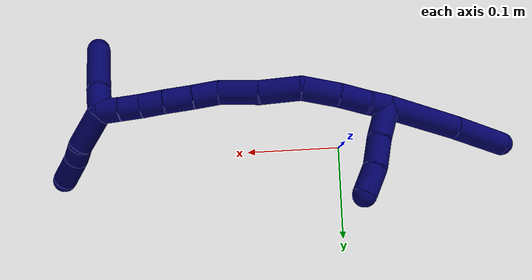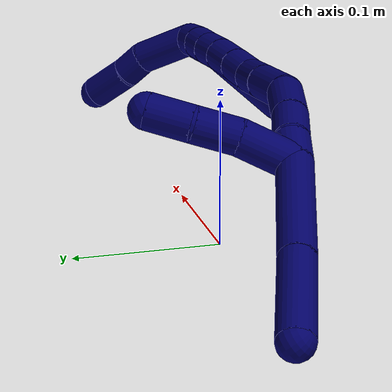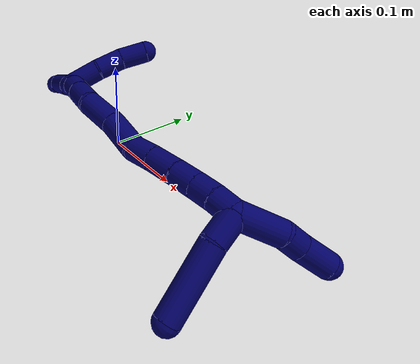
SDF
<sdf version="1.7">
 <world name="default">
  <model name="7">
   <static>0</static>
   <link name="7">
    <collision name="collision-cylinder-e_1_2_8">
     <pose>-0.014241 -0.039343 -0.006333 1.73039 -0.343228 -0.401415</pose>
     <geometry><cylinder><radius>0.0125</radius><length>0.084635</length></cylinder></geometry>
     <surface>
      <friction><ode><mu>1.16</mu><mu2>1.16</mu2><slip1>0</slip1><slip2>0</slip2></ode></friction>
      <contact><ode><kp>1e+06</kp><kd>1</kd><max_vel>0</max_vel><min_depth>0.001</min_depth></ode></contact>
     </surface>
    </collision>
    <visual name="visual-cylinder-e_1_2_8">
     <pose>-0.014241 -0.039343 -0.006333 1.73039 -0.343228 -0.401415</pose>
     <geometry><cylinder><radius>0.0125</radius><length>0.084635</length></cylinder></geometry>
     <material><ambient>0.003922 0 0.403922 1</ambient></material>
    </visual>
    <collision name="collision-cylinder-e_2_8_6">
     <pose>-0.039008 -0.108959 -0.01906 1.77897 -0.32792 -0.402562</pose>
     <geometry><cylinder><radius>0.0125</radius><length>0.065365</length></cylinder></geometry>
     <surface>
      <friction><ode><mu>1.16</mu><mu2>1.16</mu2><slip1>0</slip1><slip2>0</slip2></ode></friction>
      <contact><ode><kp>1e+06</kp><kd>1</kd><max_vel>0</max_vel><min_depth>0.001</min_depth></ode></contact>
     </surface>
    </collision>
    <visual name="visual-cylinder-e_2_8_6">
     <pose>-0.039008 -0.108959 -0.01906 1.77897 -0.32792 -0.402562</pose>
     <geometry><cylinder><radius>0.0125</radius><length>0.065365</length></cylinder></geometry>
     <material><ambient>0.003922 0 0.403922 1</ambient></material>
    </visual>
    <collision name="collision-cylinder-e_1_2_9">
     <pose>-0.013569 0.010835 -0.008892 -2.25798 -0.769187 1.41562</pose>
     <geometry><cylinder><radius>0.0125</radius><length>0.039018</length></cylinder></geometry>
     <surface>
      <friction><ode><mu>1.16</mu><mu2>1.16</mu2><slip1>0</slip1><slip2>0</slip2></ode></friction>
      <contact><ode><kp>1e+06</kp><kd>1</kd><max_vel>0</max_vel><min_depth>0.001</min_depth></ode></contact>
     </surface>
    </collision>
    <visual name="visual-cylinder-e_1_2_9">
     <pose>-0.013569 0.010835 -0.008892 -2.25798 -0.769187 1.41562</pose>
     <geometry><cylinder><radius>0.0125</radius><length>0.039018</length></cylinder></geometry>
     <material><ambient>0.003922 0 0.403922 1</ambient></material>
    </visual>
    <collision name="collision-cylinder-e_2_9_10">
     <pose>-0.038086 0.028 -0.026355 -2.50555 -0.798927 1.817</pose>
     <geometry><cylinder><radius>0.0125</radius><length>0.030553</length></cylinder></geometry>
     <surface>
      <friction><ode><mu>1.16</mu><mu2>1.16</mu2><slip1>0</slip1><slip2>0</slip2></ode></friction>
      <contact><ode><kp>1e+06</kp><kd>1</kd><max_vel>0</max_vel><min_depth>0.001</min_depth></ode></contact>
     </surface>
    </collision>
    <visual name="visual-cylinder-e_2_9_10">
     <pose>-0.038086 0.028 -0.026355 -2.50555 -0.798927 1.817</pose>
     <geometry><cylinder><radius>0.0125</radius><length>0.030553</length></cylinder></geometry>
     <material><ambient>0.003922 0 0.403922 1</ambient></material>
    </visual>
    <collision name="collision-cylinder-e_3_10_5">
     <pose>-0.057508 0.042696 -0.044396 -2.41797 -0.590758 1.35431</pose>
     <geometry><cylinder><radius>0.0125</radius><length>0.030429</length></cylinder></geometry>
     <surface>
      <friction><ode><mu>1.16</mu><mu2>1.16</mu2><slip1>0</slip1><slip2>0</slip2></ode></friction>
      <contact><ode><kp>1e+06</kp><kd>1</kd><max_vel>0</max_vel><min_depth>0.001</min_depth></ode></contact>
     </surface>
    </collision>
    <visual name="visual-cylinder-e_3_10_5">
     <pose>-0.057508 0.042696 -0.044396 -2.41797 -0.590758 1.35431</pose>
     <geometry><cylinder><radius>0.0125</radius><length>0.030429</length></cylinder></geometry>
     <material><ambient>0.003922 0 0.403922 1</ambient></material>
    </visual>
    <collision name="collision-cylinder-e_1_2_11">
     <pose>0.003434 0.010697 0.000988 -1.47873 0.309388 -0.282518</pose>
     <geometry><cylinder><radius>0.0125</radius><length>0.022556</length></cylinder></geometry>
     <surface>
      <friction><ode><mu>1.16</mu><mu2>1.16</mu2><slip1>0</slip1><slip2>0</slip2></ode></friction>
      <contact><ode><kp>1e+06</kp><kd>1</kd><max_vel>0</max_vel><min_depth>0.001</min_depth></ode></contact>
     </surface>
    </collision>
    <visual name="visual-cylinder-e_1_2_11">
     <pose>0.003434 0.010697 0.000988 -1.47873 0.309388 -0.282518</pose>
     <geometry><cylinder><radius>0.0125</radius><length>0.022556</length></cylinder></geometry>
     <material><ambient>0.003922 0 0.403922 1</ambient></material>
    </visual>
    <collision name="collision-cylinder-e_2_11_12">
     <pose>0.014325 0.035073 0.002249 -1.55076 0.499027 -0.489522</pose>
     <geometry><cylinder><radius>0.0125</radius><length>0.031164</length></cylinder></geometry>
     <surface>
      <friction><ode><mu>1.16</mu><mu2>1.16</mu2><slip1>0</slip1><slip2>0</slip2></ode></friction>
      <contact><ode><kp>1e+06</kp><kd>1</kd><max_vel>0</max_vel><min_depth>0.001</min_depth></ode></contact>
     </surface>
    </collision>
    <visual name="visual-cylinder-e_2_11_12">
     <pose>0.014325 0.035073 0.002249 -1.55076 0.499027 -0.489522</pose>
     <geometry><cylinder><radius>0.0125</radius><length>0.031164</length></cylinder></geometry>
     <material><ambient>0.003922 0 0.403922 1</ambient></material>
    </visual>
    <collision name="collision-cylinder-e_3_12_13">
     <pose>0.031368 0.065479 0.001104 -1.65546 0.518857 -0.562462</pose>
     <geometry><cylinder><radius>0.0125</radius><length>0.038664</length></cylinder></geometry>
     <surface>
      <friction><ode><mu>1.16</mu><mu2>1.16</mu2><slip1>0</slip1><slip2>0</slip2></ode></friction>
      <contact><ode><kp>1e+06</kp><kd>1</kd><max_vel>0</max_vel><min_depth>0.001</min_depth></ode></contact>
     </surface>
    </collision>
    <visual name="visual-cylinder-e_3_12_13">
     <pose>0.031368 0.065479 0.001104 -1.65546 0.518857 -0.562462</pose>
     <geometry><cylinder><radius>0.0125</radius><length>0.038664</length></cylinder></geometry>
     <material><ambient>0.003922 0 0.403922 1</ambient></material>
    </visual>
    <collision name="collision-cylinder-e_4_13_14">
     <pose>0.050777 0.098818 -0.00894 -2.04964 0.483283 -0.770714</pose>
     <geometry><cylinder><radius>0.0125</radius><length>0.042275</length></cylinder></geometry>
     <surface>
      <friction><ode><mu>1.16</mu><mu2>1.16</mu2><slip1>0</slip1><slip2>0</slip2></ode></friction>
      <contact><ode><kp>1e+06</kp><kd>1</kd><max_vel>0</max_vel><min_depth>0.001</min_depth></ode></contact>
     </surface>
    </collision>
    <visual name="visual-cylinder-e_4_13_14">
     <pose>0.050777 0.098818 -0.00894 -2.04964 0.483283 -0.770714</pose>
     <geometry><cylinder><radius>0.0125</radius><length>0.042275</length></cylinder></geometry>
     <material><ambient>0.003922 0 0.403922 1</ambient></material>
    </visual>
    <collision name="collision-cylinder-e_5_14_15">
     <pose>0.072743 0.130883 -0.025177 -2.02856 0.614024 -0.942622</pose>
     <geometry><cylinder><radius>0.0125</radius><length>0.042152</length></cylinder></geometry>
     <surface>
      <friction><ode><mu>1.16</mu><mu2>1.16</mu2><slip1>0</slip1><slip2>0</slip2></ode></friction>
      <contact><ode><kp>1e+06</kp><kd>1</kd><max_vel>0</max_vel><min_depth>0.001</min_depth></ode></contact>
     </surface>
    </collision>
    <visual name="visual-cylinder-e_5_14_15">
     <pose>0.072743 0.130883 -0.025177 -2.02856 0.614024 -0.942622</pose>
     <geometry><cylinder><radius>0.0125</radius><length>0.042152</length></cylinder></geometry>
     <material><ambient>0.003922 0 0.403922 1</ambient></material>
    </visual>
    <collision name="collision-cylinder-e_6_15_16">
     <pose>0.08904 0.158065 -0.037931 -1.98395 0.31369 -0.474872</pose>
     <geometry><cylinder><radius>0.0125</radius><length>0.026928</length></cylinder></geometry>
     <surface>
      <friction><ode><mu>1.16</mu><mu2>1.16</mu2><slip1>0</slip1><slip2>0</slip2></ode></friction>
      <contact><ode><kp>1e+06</kp><kd>1</kd><max_vel>0</max_vel><min_depth>0.001</min_depth></ode></contact>
     </surface>
    </collision>
    <visual name="visual-cylinder-e_6_15_16">
     <pose>0.08904 0.158065 -0.037931 -1.98395 0.31369 -0.474872</pose>
     <geometry><cylinder><radius>0.0125</radius><length>0.026928</length></cylinder></geometry>
     <material><ambient>0.003922 0 0.403922 1</ambient></material>
    </visual>
    <collision name="collision-cylinder-e_7_16_17">
     <pose>0.098383 0.182285 -0.048764 -1.99828 0.361389 -0.553391</pose>
     <geometry><cylinder><radius>0.0125</radius><length>0.029348</length></cylinder></geometry>
     <surface>
      <friction><ode><mu>1.16</mu><mu2>1.16</mu2><slip1>0</slip1><slip2>0</slip2></ode></friction>
      <contact><ode><kp>1e+06</kp><kd>1</kd><max_vel>0</max_vel><min_depth>0.001</min_depth></ode></contact>
     </surface>
    </collision>
    <visual name="visual-cylinder-e_7_16_17">
     <pose>0.098383 0.182285 -0.048764 -1.99828 0.361389 -0.553391</pose>
     <geometry><cylinder><radius>0.0125</radius><length>0.029348</length></cylinder></geometry>
     <material><ambient>0.003922 0 0.403922 1</ambient></material>
    </visual>
    <collision name="collision-cylinder-e_8_17_18">
     <pose>0.107925 0.204618 -0.059599 -2.05242 0.373598 -0.604948</pose>
     <geometry><cylinder><radius>0.0125</radius><length>0.023855</length></cylinder></geometry>
     <surface>
      <friction><ode><mu>1.16</mu><mu2>1.16</mu2><slip1>0</slip1><slip2>0</slip2></ode></friction>
      <contact><ode><kp>1e+06</kp><kd>1</kd><max_vel>0</max_vel><min_depth>0.001</min_depth></ode></contact>
     </surface>
    </collision>
    <visual name="visual-cylinder-e_8_17_18">
     <pose>0.107925 0.204618 -0.059599 -2.05242 0.373598 -0.604948</pose>
     <geometry><cylinder><radius>0.0125</radius><length>0.023855</length></cylinder></geometry>
     <material><ambient>0.003922 0 0.403922 1</ambient></material>
    </visual>
    <collision name="collision-cylinder-e_9_18_19">
     <pose>0.116449 0.223371 -0.069067 -2.02258 0.398507 -0.623835</pose>
     <geometry><cylinder><radius>0.0125</radius><length>0.021496</length></cylinder></geometry>
     <surface>
      <friction><ode><mu>1.16</mu><mu2>1.16</mu2><slip1>0</slip1><slip2>0</slip2></ode></friction>
      <contact><ode><kp>1e+06</kp><kd>1</kd><max_vel>0</max_vel><min_depth>0.001</min_depth></ode></contact>
     </surface>
    </collision>
    <visual name="visual-cylinder-e_9_18_19">
     <pose>0.116449 0.223371 -0.069067 -2.02258 0.398507 -0.623835</pose>
     <geometry><cylinder><radius>0.0125</radius><length>0.021496</length></cylinder></geometry>
     <material><ambient>0.003922 0 0.403922 1</ambient></material>
    </visual>
    <collision name="collision-cylinder-e_10_19_1">
     <pose>0.125432 0.240665 -0.078168 -2.08871 0.462727 -0.770266</pose>
     <geometry><cylinder><radius>0.0125</radius><length>0.021562</length></cylinder></geometry>
     <surface>
      <friction><ode><mu>1.16</mu><mu2>1.16</mu2><slip1>0</slip1><slip2>0</slip2></ode></friction>
      <contact><ode><kp>1e+06</kp><kd>1</kd><max_vel>0</max_vel><min_depth>0.001</min_depth></ode></contact>
     </surface>
    </collision>
    <visual name="visual-cylinder-e_10_19_1">
     <pose>0.125432 0.240665 -0.078168 -2.08871 0.462727 -0.770266</pose>
     <geometry><cylinder><radius>0.0125</radius><length>0.021562</length></cylinder></geometry>
     <material><ambient>0.003922 0 0.403922 1</ambient></material>
    </visual>
    <collision name="collision-cylinder-e_1_1_20">
     <pose>0.143942 0.245505 -0.079493 0.798408 1.22434 0.575945</pose>
     <geometry><cylinder><radius>0.0125</radius><length>0.029125</length></cylinder></geometry>
     <surface>
      <friction><ode><mu>1.16</mu><mu2>1.16</mu2><slip1>0</slip1><slip2>0</slip2></ode></friction>
      <contact><ode><kp>1e+06</kp><kd>1</kd><max_vel>0</max_vel><min_depth>0.001</min_depth></ode></contact>
     </surface>
    </collision>
    <visual name="visual-cylinder-e_1_1_20">
     <pose>0.143942 0.245505 -0.079493 0.798408 1.22434 0.575945</pose>
     <geometry><cylinder><radius>0.0125</radius><length>0.029125</length></cylinder></geometry>
     <material><ambient>0.003922 0 0.403922 1</ambient></material>
    </visual>
    <collision name="collision-cylinder-e_2_20_4">
     <pose>0.191207 0.230847 -0.073704 1.36348 1.24447 1.05433</pose>
     <geometry><cylinder><radius>0.0125</radius><length>0.070875</length></cylinder></geometry>
     <surface>
      <friction><ode><mu>1.16</mu><mu2>1.16</mu2><slip1>0</slip1><slip2>0</slip2></ode></friction>
      <contact><ode><kp>1e+06</kp><kd>1</kd><max_vel>0</max_vel><min_depth>0.001</min_depth></ode></contact>
     </surface>
    </collision>
    <visual name="visual-cylinder-e_2_20_4">
     <pose>0.191207 0.230847 -0.073704 1.36348 1.24447 1.05433</pose>
     <geometry><cylinder><radius>0.0125</radius><length>0.070875</length></cylinder></geometry>
     <material><ambient>0.003922 0 0.403922 1</ambient></material>
    </visual>
    <collision name="collision-cylinder-e_1_1_21">
     <pose>0.130512 0.256107 -0.10448 -2.82481 0.011804 -0.07387</pose>
     <geometry><cylinder><radius>0.0125</radius><length>0.04533</length></cylinder></geometry>
     <surface>
      <friction><ode><mu>1.16</mu><mu2>1.16</mu2><slip1>0</slip1><slip2>0</slip2></ode></friction>
      <contact><ode><kp>1e+06</kp><kd>1</kd><max_vel>0</max_vel><min_depth>0.001</min_depth></ode></contact>
     </surface>
    </collision>
    <visual name="visual-cylinder-e_1_1_21">
     <pose>0.130512 0.256107 -0.10448 -2.82481 0.011804 -0.07387</pose>
     <geometry><cylinder><radius>0.0125</radius><length>0.04533</length></cylinder></geometry>
     <material><ambient>0.003922 0 0.403922 1</ambient></material>
    </visual>
    <collision name="collision-cylinder-e_2_21_22">
     <pose>0.13229 0.263538 -0.136187 -3.10511 0.147313 -2.65686</pose>
     <geometry><cylinder><radius>0.0125</radius><length>0.02058</length></cylinder></geometry>
     <surface>
      <friction><ode><mu>1.16</mu><mu2>1.16</mu2><slip1>0</slip1><slip2>0</slip2></ode></friction>
      <contact><ode><kp>1e+06</kp><kd>1</kd><max_vel>0</max_vel><min_depth>0.001</min_depth></ode></contact>
     </surface>
    </collision>
    <visual name="visual-cylinder-e_2_21_22">
     <pose>0.13229 0.263538 -0.136187 -3.10511 0.147313 -2.65686</pose>
     <geometry><cylinder><radius>0.0125</radius><length>0.02058</length></cylinder></geometry>
     <material><ambient>0.003922 0 0.403922 1</ambient></material>
    </visual>
    <collision name="collision-cylinder-e_3_22_3">
     <pose>0.136257 0.267002 -0.16294 -2.95721 0.144615 -1.32917</pose>
     <geometry><cylinder><radius>0.0125</radius><length>0.03409</length></cylinder></geometry>
     <surface>
      <friction><ode><mu>1.16</mu><mu2>1.16</mu2><slip1>0</slip1><slip2>0</slip2></ode></friction>
      <contact><ode><kp>1e+06</kp><kd>1</kd><max_vel>0</max_vel><min_depth>0.001</min_depth></ode></contact>
     </surface>
    </collision>
    <visual name="visual-cylinder-e_3_22_3">
     <pose>0.136257 0.267002 -0.16294 -2.95721 0.144615 -1.32917</pose>
     <geometry><cylinder><radius>0.0125</radius><length>0.03409</length></cylinder></geometry>
     <material><ambient>0.003922 0 0.403922 1</ambient></material>
    </visual>
    <collision name="collision-sphere-3">
     <pose>0.138713 0.270094 -0.179521 0 -0 0</pose>
     <geometry><sphere><radius>0.0125</radius></sphere></geometry>
     <surface>
      <friction><ode><mu>1.16</mu><mu2>1.16</mu2><slip1>0</slip1><slip2>0</slip2></ode></friction>
      <contact><ode><kp>1e+06</kp><kd>1</kd><max_vel>0</max_vel><min_depth>0.001</min_depth></ode></contact>
     </surface>
    </collision>
    <visual name="visual-sphere-3">
     <pose>0.138713 0.270094 -0.179521 0 -0 0</pose>
     <geometry><sphere><radius>0.0125</radius></sphere></geometry>
     <material><ambient>0.003922 0 0.403922 1</ambient></material>
    </visual>
    <collision name="collision-sphere-22">
     <pose>0.1338 0.26391 -0.146359 0 -0 0</pose>
     <geometry><sphere><radius>0.0125</radius></sphere></geometry>
     <surface>
      <friction><ode><mu>1.16</mu><mu2>1.16</mu2><slip1>0</slip1><slip2>0</slip2></ode></friction>
      <contact><ode><kp>1e+06</kp><kd>1</kd><max_vel>0</max_vel><min_depth>0.001</min_depth></ode></contact>
     </surface>
    </collision>
    <visual name="visual-sphere-22">
     <pose>0.1338 0.26391 -0.146359 0 -0 0</pose>
     <geometry><sphere><radius>0.0125</radius></sphere></geometry>
     <material><ambient>0.003922 0 0.403922 1</ambient></material>
    </visual>
    <collision name="collision-sphere-21">
     <pose>0.13078 0.263167 -0.126016 0 -0 0</pose>
     <geometry><sphere><radius>0.0125</radius></sphere></geometry>
     <surface>
      <friction><ode><mu>1.16</mu><mu2>1.16</mu2><slip1>0</slip1><slip2>0</slip2></ode></friction>
      <contact><ode><kp>1e+06</kp><kd>1</kd><max_vel>0</max_vel><min_depth>0.001</min_depth></ode></contact>
     </surface>
    </collision>
    <visual name="visual-sphere-21">
     <pose>0.13078 0.263167 -0.126016 0 -0 0</pose>
     <geometry><sphere><radius>0.0125</radius></sphere></geometry>
     <material><ambient>0.003922 0 0.403922 1</ambient></material>
    </visual>
    <collision name="collision-sphere-4">
     <pose>0.224774 0.21973 -0.071366 0 -0 0</pose>
     <geometry><sphere><radius>0.0125</radius></sphere></geometry>
     <surface>
      <friction><ode><mu>1.16</mu><mu2>1.16</mu2><slip1>0</slip1><slip2>0</slip2></ode></friction>
      <contact><ode><kp>1e+06</kp><kd>1</kd><max_vel>0</max_vel><min_depth>0.001</min_depth></ode></contact>
     </surface>
    </collision>
    <visual name="visual-sphere-4">
     <pose>0.224774 0.21973 -0.071366 0 -0 0</pose>
     <geometry><sphere><radius>0.0125</radius></sphere></geometry>
     <material><ambient>0.003922 0 0.403922 1</ambient></material>
    </visual>
    <collision name="collision-sphere-20">
     <pose>0.157639 0.241963 -0.076042 0 -0 0</pose>
     <geometry><sphere><radius>0.0125</radius></sphere></geometry>
     <surface>
      <friction><ode><mu>1.16</mu><mu2>1.16</mu2><slip1>0</slip1><slip2>0</slip2></ode></friction>
      <contact><ode><kp>1e+06</kp><kd>1</kd><max_vel>0</max_vel><min_depth>0.001</min_depth></ode></contact>
     </surface>
    </collision>
    <visual name="visual-sphere-20">
     <pose>0.157639 0.241963 -0.076042 0 -0 0</pose>
     <geometry><sphere><radius>0.0125</radius></sphere></geometry>
     <material><ambient>0.003922 0 0.403922 1</ambient></material>
    </visual>
    <collision name="collision-sphere-5">
     <pose>-0.065982 0.051062 -0.053865 0 -0 0</pose>
     <geometry><sphere><radius>0.0125</radius></sphere></geometry>
     <surface>
      <friction><ode><mu>1.16</mu><mu2>1.16</mu2><slip1>0</slip1><slip2>0</slip2></ode></friction>
      <contact><ode><kp>1e+06</kp><kd>1</kd><max_vel>0</max_vel><min_depth>0.001</min_depth></ode></contact>
     </surface>
    </collision>
    <visual name="visual-sphere-5">
     <pose>-0.065982 0.051062 -0.053865 0 -0 0</pose>
     <geometry><sphere><radius>0.0125</radius></sphere></geometry>
     <material><ambient>0.003922 0 0.403922 1</ambient></material>
    </visual>
    <collision name="collision-sphere-10">
     <pose>-0.049034 0.034329 -0.034926 0 -0 0</pose>
     <geometry><sphere><radius>0.0125</radius></sphere></geometry>
     <surface>
      <friction><ode><mu>1.16</mu><mu2>1.16</mu2><slip1>0</slip1><slip2>0</slip2></ode></friction>
      <contact><ode><kp>1e+06</kp><kd>1</kd><max_vel>0</max_vel><min_depth>0.001</min_depth></ode></contact>
     </surface>
    </collision>
    <visual name="visual-sphere-10">
     <pose>-0.049034 0.034329 -0.034926 0 -0 0</pose>
     <geometry><sphere><radius>0.0125</radius></sphere></geometry>
     <material><ambient>0.003922 0 0.403922 1</ambient></material>
    </visual>
    <collision name="collision-sphere-6">
     <pose>-0.049534 -0.139232 -0.025455 0 -0 0</pose>
     <geometry><sphere><radius>0.0125</radius></sphere></geometry>
     <surface>
      <friction><ode><mu>1.16</mu><mu2>1.16</mu2><slip1>0</slip1><slip2>0</slip2></ode></friction>
      <contact><ode><kp>1e+06</kp><kd>1</kd><max_vel>0</max_vel><min_depth>0.001</min_depth></ode></contact>
     </surface>
    </collision>
    <visual name="visual-sphere-6">
     <pose>-0.049534 -0.139232 -0.025455 0 -0 0</pose>
     <geometry><sphere><radius>0.0125</radius></sphere></geometry>
     <material><ambient>0.003922 0 0.403922 1</ambient></material>
    </visual>
    <collision name="collision-sphere-9">
     <pose>-0.027139 0.021671 -0.017783 0 -0 0</pose>
     <geometry><sphere><radius>0.0125</radius></sphere></geometry>
     <surface>
      <friction><ode><mu>1.16</mu><mu2>1.16</mu2><slip1>0</slip1><slip2>0</slip2></ode></friction>
      <contact><ode><kp>1e+06</kp><kd>1</kd><max_vel>0</max_vel><min_depth>0.001</min_depth></ode></contact>
     </surface>
    </collision>
    <visual name="visual-sphere-9">
     <pose>-0.027139 0.021671 -0.017783 0 -0 0</pose>
     <geometry><sphere><radius>0.0125</radius></sphere></geometry>
     <material><ambient>0.003922 0 0.403922 1</ambient></material>
    </visual>
    <collision name="collision-sphere-2">
     <geometry><sphere><radius>0.0125</radius></sphere></geometry>
     <surface>
      <friction><ode><mu>1.16</mu><mu2>1.16</mu2><slip1>0</slip1><slip2>0</slip2></ode></friction>
      <contact><ode><kp>1e+06</kp><kd>1</kd><max_vel>0</max_vel><min_depth>0.001</min_depth></ode></contact>
     </surface>
    </collision>
    <visual name="visual-sphere-2">
     <geometry><sphere><radius>0.0125</radius></sphere></geometry>
     <material><ambient>0.003922 0 0.403922 1</ambient></material>
    </visual>
    <collision name="collision-sphere-19">
     <pose>0.12062 0.232283 -0.073392 0 -0 0</pose>
     <geometry><sphere><radius>0.0125</radius></sphere></geometry>
     <surface>
      <friction><ode><mu>1.16</mu><mu2>1.16</mu2><slip1>0</slip1><slip2>0</slip2></ode></friction>
      <contact><ode><kp>1e+06</kp><kd>1</kd><max_vel>0</max_vel><min_depth>0.001</min_depth></ode></contact>
     </surface>
    </collision>
    <visual name="visual-sphere-19">
     <pose>0.12062 0.232283 -0.073392 0 -0 0</pose>
     <geometry><sphere><radius>0.0125</radius></sphere></geometry>
     <material><ambient>0.003922 0 0.403922 1</ambient></material>
    </visual>
    <collision name="collision-sphere-8">
     <pose>-0.028482 -0.078686 -0.012665 0 -0 0</pose>
     <geometry><sphere><radius>0.0125</radius></sphere></geometry>
     <surface>
      <friction><ode><mu>1.16</mu><mu2>1.16</mu2><slip1>0</slip1><slip2>0</slip2></ode></friction>
      <contact><ode><kp>1e+06</kp><kd>1</kd><max_vel>0</max_vel><min_depth>0.001</min_depth></ode></contact>
     </surface>
    </collision>
    <visual name="visual-sphere-8">
     <pose>-0.028482 -0.078686 -0.012665 0 -0 0</pose>
     <geometry><sphere><radius>0.0125</radius></sphere></geometry>
     <material><ambient>0.003922 0 0.403922 1</ambient></material>
    </visual>
    <collision name="collision-sphere-11">
     <pose>0.006868 0.021394 0.001975 0 -0 0</pose>
     <geometry><sphere><radius>0.0125</radius></sphere></geometry>
     <surface>
      <friction><ode><mu>1.16</mu><mu2>1.16</mu2><slip1>0</slip1><slip2>0</slip2></ode></friction>
      <contact><ode><kp>1e+06</kp><kd>1</kd><max_vel>0</max_vel><min_depth>0.001</min_depth></ode></contact>
     </surface>
    </collision>
    <visual name="visual-sphere-11">
     <pose>0.006868 0.021394 0.001975 0 -0 0</pose>
     <geometry><sphere><radius>0.0125</radius></sphere></geometry>
     <material><ambient>0.003922 0 0.403922 1</ambient></material>
    </visual>
    <collision name="collision-sphere-12">
     <pose>0.021782 0.048752 0.002523 0 -0 0</pose>
     <geometry><sphere><radius>0.0125</radius></sphere></geometry>
     <surface>
      <friction><ode><mu>1.16</mu><mu2>1.16</mu2><slip1>0</slip1><slip2>0</slip2></ode></friction>
      <contact><ode><kp>1e+06</kp><kd>1</kd><max_vel>0</max_vel><min_depth>0.001</min_depth></ode></contact>
     </surface>
    </collision>
    <visual name="visual-sphere-12">
     <pose>0.021782 0.048752 0.002523 0 -0 0</pose>
     <geometry><sphere><radius>0.0125</radius></sphere></geometry>
     <material><ambient>0.003922 0 0.403922 1</ambient></material>
    </visual>
    <collision name="collision-sphere-13">
     <pose>0.040955 0.082207 -0.000316 0 -0 0</pose>
     <geometry><sphere><radius>0.0125</radius></sphere></geometry>
     <surface>
      <friction><ode><mu>1.16</mu><mu2>1.16</mu2><slip1>0</slip1><slip2>0</slip2></ode></friction>
      <contact><ode><kp>1e+06</kp><kd>1</kd><max_vel>0</max_vel><min_depth>0.001</min_depth></ode></contact>
     </surface>
    </collision>
    <visual name="visual-sphere-13">
     <pose>0.040955 0.082207 -0.000316 0 -0 0</pose>
     <geometry><sphere><radius>0.0125</radius></sphere></geometry>
     <material><ambient>0.003922 0 0.403922 1</ambient></material>
    </visual>
    <collision name="collision-sphere-14">
     <pose>0.0606 0.11543 -0.017564 0 -0 0</pose>
     <geometry><sphere><radius>0.0125</radius></sphere></geometry>
     <surface>
      <friction><ode><mu>1.16</mu><mu2>1.16</mu2><slip1>0</slip1><slip2>0</slip2></ode></friction>
      <contact><ode><kp>1e+06</kp><kd>1</kd><max_vel>0</max_vel><min_depth>0.001</min_depth></ode></contact>
     </surface>
    </collision>
    <visual name="visual-sphere-14">
     <pose>0.0606 0.11543 -0.017564 0 -0 0</pose>
     <geometry><sphere><radius>0.0125</radius></sphere></geometry>
     <material><ambient>0.003922 0 0.403922 1</ambient></material>
    </visual>
    <collision name="collision-sphere-15">
     <pose>0.084886 0.146335 -0.032789 0 -0 0</pose>
     <geometry><sphere><radius>0.0125</radius></sphere></geometry>
     <surface>
      <friction><ode><mu>1.16</mu><mu2>1.16</mu2><slip1>0</slip1><slip2>0</slip2></ode></friction>
      <contact><ode><kp>1e+06</kp><kd>1</kd><max_vel>0</max_vel><min_depth>0.001</min_depth></ode></contact>
     </surface>
    </collision>
    <visual name="visual-sphere-15">
     <pose>0.084886 0.146335 -0.032789 0 -0 0</pose>
     <geometry><sphere><radius>0.0125</radius></sphere></geometry>
     <material><ambient>0.003922 0 0.403922 1</ambient></material>
    </visual>
    <collision name="collision-sphere-16">
     <pose>0.093195 0.169794 -0.043073 0 -0 0</pose>
     <geometry><sphere><radius>0.0125</radius></sphere></geometry>
     <surface>
      <friction><ode><mu>1.16</mu><mu2>1.16</mu2><slip1>0</slip1><slip2>0</slip2></ode></friction>
      <contact><ode><kp>1e+06</kp><kd>1</kd><max_vel>0</max_vel><min_depth>0.001</min_depth></ode></contact>
     </surface>
    </collision>
    <visual name="visual-sphere-16">
     <pose>0.093195 0.169794 -0.043073 0 -0 0</pose>
     <geometry><sphere><radius>0.0125</radius></sphere></geometry>
     <material><ambient>0.003922 0 0.403922 1</ambient></material>
    </visual>
    <collision name="collision-sphere-17">
     <pose>0.103572 0.194776 -0.054455 0 -0 0</pose>
     <geometry><sphere><radius>0.0125</radius></sphere></geometry>
     <surface>
      <friction><ode><mu>1.16</mu><mu2>1.16</mu2><slip1>0</slip1><slip2>0</slip2></ode></friction>
      <contact><ode><kp>1e+06</kp><kd>1</kd><max_vel>0</max_vel><min_depth>0.001</min_depth></ode></contact>
     </surface>
    </collision>
    <visual name="visual-sphere-17">
     <pose>0.103572 0.194776 -0.054455 0 -0 0</pose>
     <geometry><sphere><radius>0.0125</radius></sphere></geometry>
     <material><ambient>0.003922 0 0.403922 1</ambient></material>
    </visual>
    <collision name="collision-sphere-18">
     <pose>0.112278 0.214459 -0.064742 0 -0 0</pose>
     <geometry><sphere><radius>0.0125</radius></sphere></geometry>
     <surface>
      <friction><ode><mu>1.16</mu><mu2>1.16</mu2><slip1>0</slip1><slip2>0</slip2></ode></friction>
      <contact><ode><kp>1e+06</kp><kd>1</kd><max_vel>0</max_vel><min_depth>0.001</min_depth></ode></contact>
     </surface>
    </collision>
    <visual name="visual-sphere-18">
     <pose>0.112278 0.214459 -0.064742 0 -0 0</pose>
     <geometry><sphere><radius>0.0125</radius></sphere></geometry>
     <material><ambient>0.003922 0 0.403922 1</ambient></material>
    </visual>
    <collision name="collision-sphere-1">
     <pose>0.130245 0.249047 -0.082944 0 -0 0</pose>
     <geometry><sphere><radius>0.0125</radius></sphere></geometry>
     <surface>
      <friction><ode><mu>1.16</mu><mu2>1.16</mu2><slip1>0</slip1><slip2>0</slip2></ode></friction>
      <contact><ode><kp>1e+06</kp><kd>1</kd><max_vel>0</max_vel><min_depth>0.001</min_depth></ode></contact>
     </surface>
    </collision>
    <visual name="visual-sphere-1">
     <pose>0.130245 0.249047 -0.082944 0 -0 0</pose>
     <geometry><sphere><radius>0.0125</radius></sphere></geometry>
     <material><ambient>0.003922 0 0.403922 1</ambient></material>
    </visual>
    <inertial>
     <pose>0.058462 0.106414 -0.044354 0 -0 0</pose>
     <mass>0.75</mass>
     <inertia><ixx>8.5e-05</ixx><ixy>0</ixy><ixz>0</ixz><iyy>4e-06</iyy><iyz>0</iyz><izz>6e-06</izz></inertia>
    </inertial>
   </link>
   <pose>-0.047691 -0.035438 0.069772 0.711922 0.615603 -1.00902</pose>
  </model>
 </world>
</sdf>
